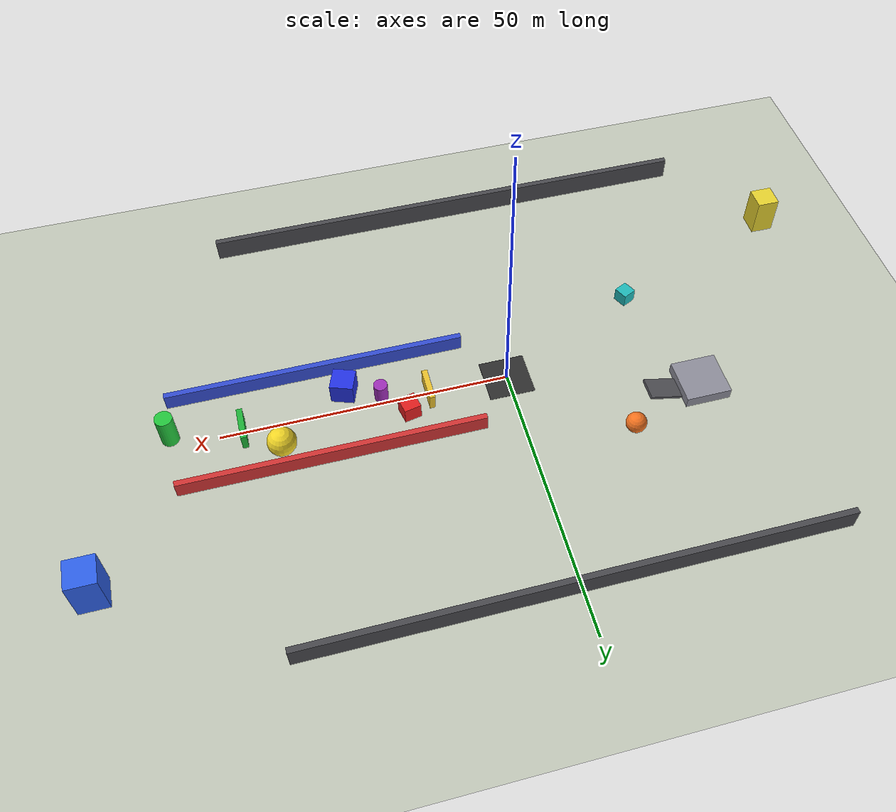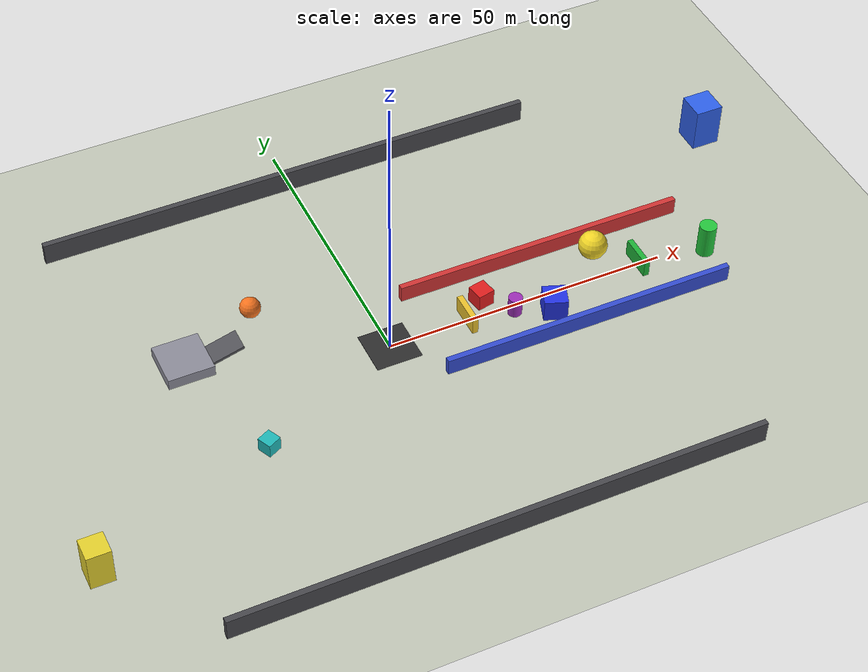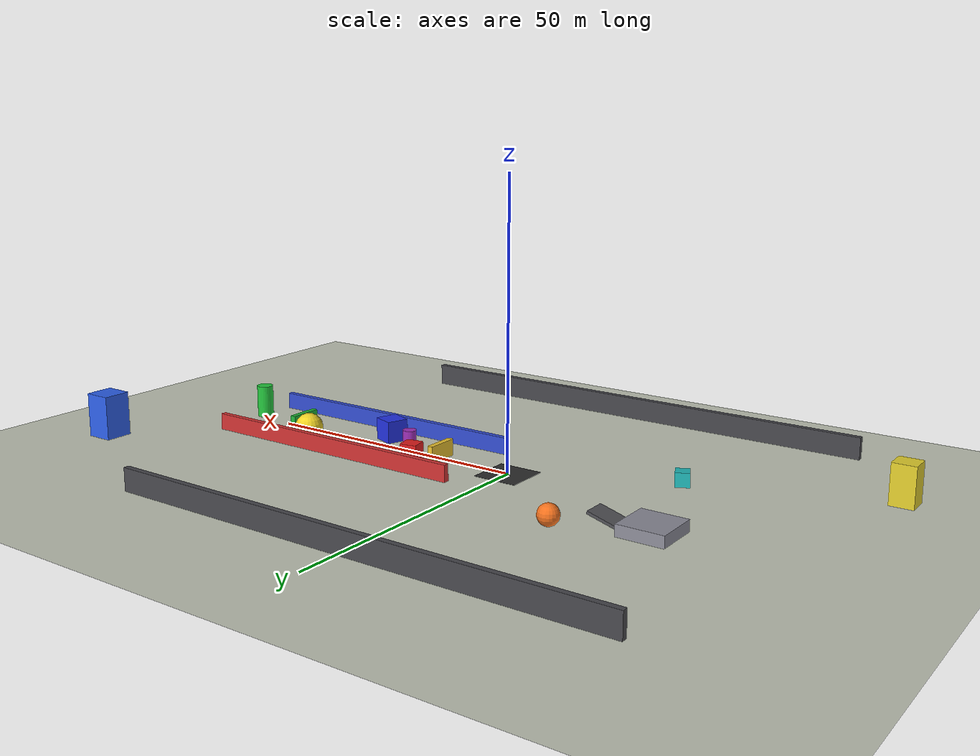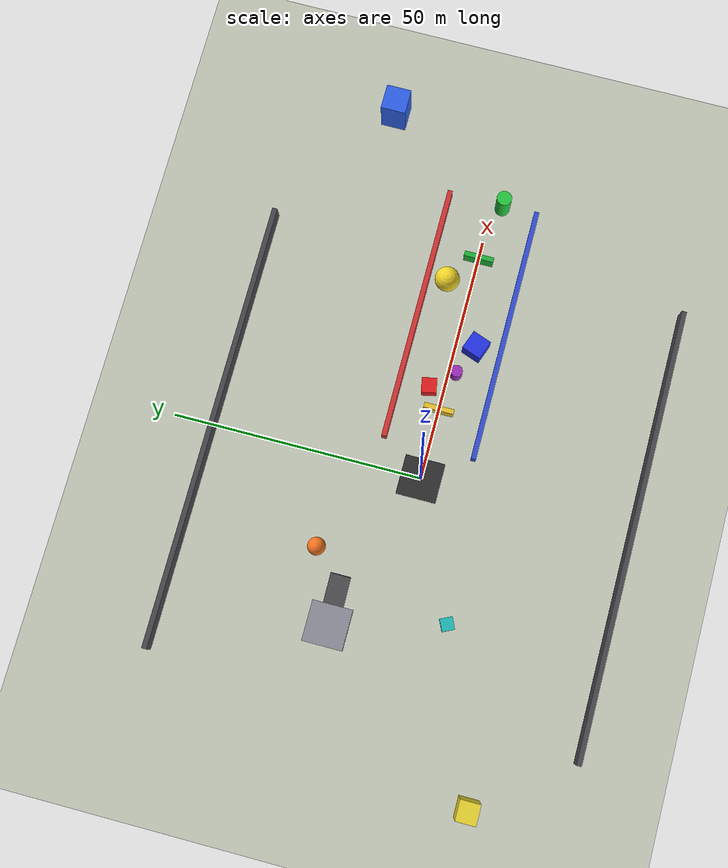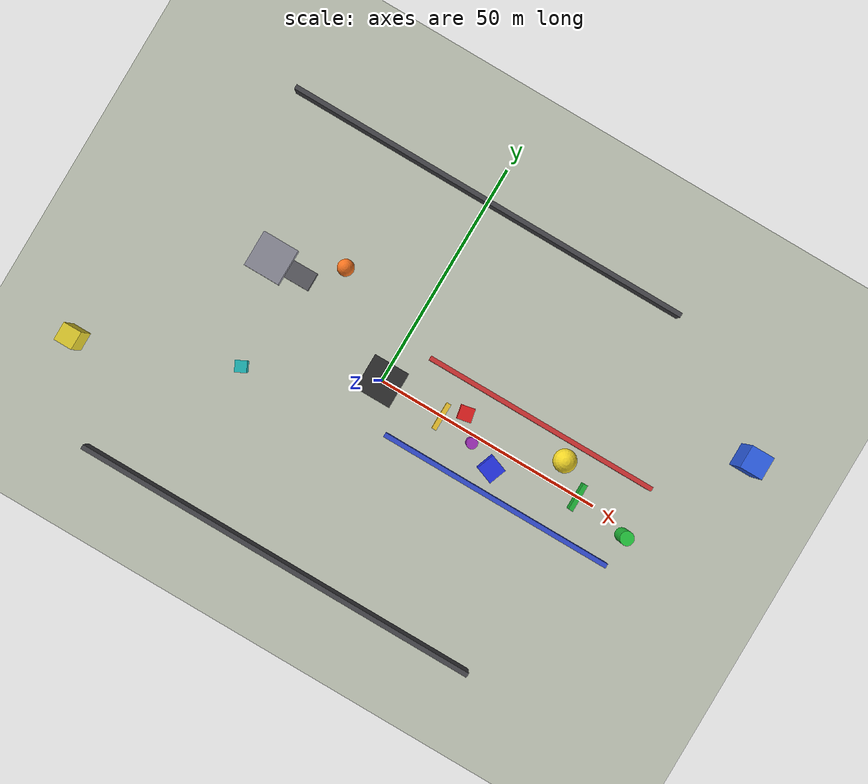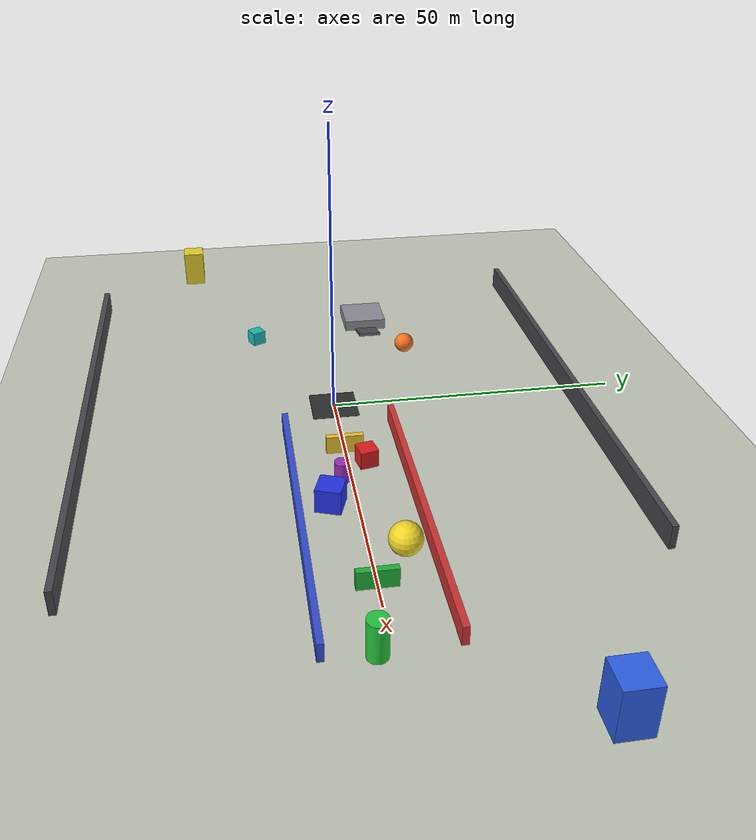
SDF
<?xml version="1.0" encoding="UTF-8"?>
<sdf version="1.9">
  <world name="mission_test_world">
    <physics type="ode">
      <max_step_size>0.004</max_step_size>
      <real_time_factor>1.0</real_time_factor>
      <real_time_update_rate>250</real_time_update_rate>
    </physics>

    <gravity>0 0 -9.8</gravity>
    <magnetic_field>6e-06 2.3e-05 -4.2e-05</magnetic_field>
    <atmosphere type="adiabatic"/>

    <scene>
      <grid>false</grid>
      <ambient>0.45 0.45 0.45 1</ambient>
      <background>0.68 0.79 0.92 1</background>
      <shadows>true</shadows>
      <sky>
        <clouds>true</clouds>
      </sky>
    </scene>

    <light name="sunUTC" type="directional">
      <pose>0 0 500 0 0 0</pose>
      <cast_shadows>true</cast_shadows>
      <intensity>1.1</intensity>
      <direction>0.2 0.4 -0.88</direction>
      <diffuse>0.95 0.95 0.92 1</diffuse>
      <specular>0.3 0.3 0.3 1</specular>
      <attenuation>
        <range>2000</range>
        <linear>0</linear>
        <constant>1</constant>
        <quadratic>0</quadratic>
      </attenuation>
    </light>

    <light name="fill_light" type="directional">
      <pose>0 0 300 0 0 0</pose>
      <cast_shadows>false</cast_shadows>
      <intensity>0.45</intensity>
      <direction>-0.3 -0.2 -0.93</direction>
      <diffuse>0.72 0.76 0.85 1</diffuse>
      <specular>0.1 0.1 0.1 1</specular>
      <attenuation>
        <range>2000</range>
        <linear>0</linear>
        <constant>1</constant>
        <quadratic>0</quadratic>
      </attenuation>
    </light>

    <model name="ground_plane">
      <static>true</static>
      <link name="link">
        <collision name="collision">
          <geometry>
            <plane>
              <normal>0 0 1</normal>
              <size>1 1</size>
            </plane>
          </geometry>
          <surface>
            <friction>
              <ode/>
            </friction>
          </surface>
        </collision>
        <visual name="visual">
          <geometry>
            <plane>
              <normal>0 0 1</normal>
              <size>600 600</size>
            </plane>
          </geometry>
          <material>
            <ambient>0.76 0.78 0.72 1</ambient>
            <diffuse>0.76 0.78 0.72 1</diffuse>
            <specular>0.1 0.1 0.1 1</specular>
          </material>
        </visual>
      </link>
    </model>

    <model name="spawn_pad">
      <static>true</static>
      <pose>0 0 0.025 0 0 0</pose>
      <link name="link">
        <collision name="collision">
          <geometry>
            <box>
              <size>8 8 0.05</size>
            </box>
          </geometry>
        </collision>
        <visual name="visual">
          <geometry>
            <box>
              <size>8 8 0.05</size>
            </box>
          </geometry>
          <material>
            <ambient>0.18 0.18 0.18 1</ambient>
            <diffuse>0.18 0.18 0.18 1</diffuse>
          </material>
        </visual>
      </link>
    </model>

    <model name="corridor_left_wall">
      <static>true</static>
      <pose>32 9 1.5 0 0 0</pose>
      <link name="link">
        <collision name="collision">
          <geometry>
            <box>
              <size>52 1 3</size>
            </box>
          </geometry>
        </collision>
        <visual name="visual">
          <geometry>
            <box>
              <size>52 1 3</size>
            </box>
          </geometry>
          <material>
            <ambient>0.82 0.2 0.2 1</ambient>
            <diffuse>0.82 0.2 0.2 1</diffuse>
          </material>
        </visual>
      </link>
    </model>

    <model name="corridor_right_wall">
      <static>true</static>
      <pose>32 -9 1.5 0 0 0</pose>
      <link name="link">
        <collision name="collision">
          <geometry>
            <box>
              <size>52 1 3</size>
            </box>
          </geometry>
        </collision>
        <visual name="visual">
          <geometry>
            <box>
              <size>52 1 3</size>
            </box>
          </geometry>
          <material>
            <ambient>0.2 0.3 0.82 1</ambient>
            <diffuse>0.2 0.3 0.82 1</diffuse>
          </material>
        </visual>
      </link>
    </model>

    <model name="corridor_gate_a">
      <static>true</static>
      <pose>14 0 1.5 0 0 0</pose>
      <link name="link">
        <collision name="collision">
          <geometry>
            <box>
              <size>1 6 3</size>
            </box>
          </geometry>
        </collision>
        <visual name="visual">
          <geometry>
            <box>
              <size>1 6 3</size>
            </box>
          </geometry>
          <material>
            <ambient>0.92 0.76 0.18 1</ambient>
            <diffuse>0.92 0.76 0.18 1</diffuse>
          </material>
        </visual>
      </link>
    </model>

    <model name="corridor_gate_b">
      <static>true</static>
      <pose>46 0 1.5 0 0 0</pose>
      <link name="link">
        <collision name="collision">
          <geometry>
            <box>
              <size>1 6 3</size>
            </box>
          </geometry>
        </collision>
        <visual name="visual">
          <geometry>
            <box>
              <size>1 6 3</size>
            </box>
          </geometry>
          <material>
            <ambient>0.12 0.7 0.22 1</ambient>
            <diffuse>0.12 0.7 0.22 1</diffuse>
          </material>
        </visual>
      </link>
    </model>

    <model name="red_cube_landmark">
      <static>true</static>
      <pose>18 3 1.5 0 0 0.2</pose>
      <link name="link">
        <collision name="collision">
          <geometry>
            <box>
              <size>3 3 3</size>
            </box>
          </geometry>
        </collision>
        <visual name="visual">
          <geometry>
            <box>
              <size>3 3 3</size>
            </box>
          </geometry>
          <material>
            <ambient>0.88 0.12 0.12 1</ambient>
            <diffuse>0.88 0.12 0.12 1</diffuse>
          </material>
        </visual>
      </link>
    </model>

    <model name="blue_cube_landmark">
      <static>true</static>
      <pose>28 -4 2 0 0 -0.35</pose>
      <link name="link">
        <collision name="collision">
          <geometry>
            <box>
              <size>4 4 4</size>
            </box>
          </geometry>
        </collision>
        <visual name="visual">
          <geometry>
            <box>
              <size>4 4 4</size>
            </box>
          </geometry>
          <material>
            <ambient>0.14 0.2 0.9 1</ambient>
            <diffuse>0.14 0.2 0.9 1</diffuse>
          </material>
        </visual>
      </link>
    </model>

    <model name="yellow_sphere_marker">
      <static>true</static>
      <pose>40 5 2.5 0 0 0</pose>
      <link name="link">
        <collision name="collision">
          <geometry>
            <sphere>
              <radius>2.5</radius>
            </sphere>
          </geometry>
        </collision>
        <visual name="visual">
          <geometry>
            <sphere>
              <radius>2.5</radius>
            </sphere>
          </geometry>
          <material>
            <ambient>0.95 0.84 0.15 1</ambient>
            <diffuse>0.95 0.84 0.15 1</diffuse>
          </material>
        </visual>
      </link>
    </model>

    <model name="green_cylinder_tower">
      <static>true</static>
      <pose>58 -2 3 0 0 0</pose>
      <link name="link">
        <collision name="collision">
          <geometry>
            <cylinder>
              <radius>1.5</radius>
              <length>6</length>
            </cylinder>
          </geometry>
        </collision>
        <visual name="visual">
          <geometry>
            <cylinder>
              <radius>1.5</radius>
              <length>6</length>
            </cylinder>
          </geometry>
          <material>
            <ambient>0.14 0.78 0.24 1</ambient>
            <diffuse>0.14 0.78 0.24 1</diffuse>
          </material>
        </visual>
      </link>
    </model>

    <model name="purple_cylinder_obstacle">
      <static>true</static>
      <pose>22 -1.5 1.75 0 0 0</pose>
      <link name="link">
        <collision name="collision">
          <geometry>
            <cylinder>
              <radius>1.2</radius>
              <length>3.5</length>
            </cylinder>
          </geometry>
        </collision>
        <visual name="visual">
          <geometry>
            <cylinder>
              <radius>1.2</radius>
              <length>3.5</length>
            </cylinder>
          </geometry>
          <material>
            <ambient>0.62 0.18 0.72 1</ambient>
            <diffuse>0.62 0.18 0.72 1</diffuse>
          </material>
        </visual>
      </link>
    </model>

    <model name="orange_sphere_marker">
      <static>true</static>
      <pose>-18 16 1.8 0 0 0</pose>
      <link name="link">
        <collision name="collision">
          <geometry>
            <sphere>
              <radius>1.8</radius>
            </sphere>
          </geometry>
        </collision>
        <visual name="visual">
          <geometry>
            <sphere>
              <radius>1.8</radius>
            </sphere>
          </geometry>
          <material>
            <ambient>0.96 0.45 0.12 1</ambient>
            <diffuse>0.96 0.45 0.12 1</diffuse>
          </material>
        </visual>
      </link>
    </model>

    <model name="teal_cube_obstacle">
      <static>true</static>
      <pose>-26 -12 1.25 0 0 0.45</pose>
      <link name="link">
        <collision name="collision">
          <geometry>
            <box>
              <size>2.5 2.5 2.5</size>
            </box>
          </geometry>
        </collision>
        <visual name="visual">
          <geometry>
            <box>
              <size>2.5 2.5 2.5</size>
            </box>
          </geometry>
          <material>
            <ambient>0.12 0.72 0.72 1</ambient>
            <diffuse>0.12 0.72 0.72 1</diffuse>
          </material>
        </visual>
      </link>
    </model>

    <model name="observation_platform">
      <static>true</static>
      <pose>-32 10 1 0 0 0</pose>
      <link name="link">
        <collision name="collision">
          <geometry>
            <box>
              <size>8 8 2</size>
            </box>
          </geometry>
        </collision>
        <visual name="visual">
          <geometry>
            <box>
              <size>8 8 2</size>
            </box>
          </geometry>
          <material>
            <ambient>0.55 0.55 0.6 1</ambient>
            <diffuse>0.55 0.55 0.6 1</diffuse>
          </material>
        </visual>
      </link>
    </model>

    <model name="access_ramp">
      <static>true</static>
      <pose>-26 10 0.75 0 -0.28 0</pose>
      <link name="link">
        <collision name="collision">
          <geometry>
            <box>
              <size>8 4 0.5</size>
            </box>
          </geometry>
        </collision>
        <visual name="visual">
          <geometry>
            <box>
              <size>8 4 0.5</size>
            </box>
          </geometry>
          <material>
            <ambient>0.32 0.32 0.34 1</ambient>
            <diffuse>0.32 0.32 0.34 1</diffuse>
          </material>
        </visual>
      </link>
    </model>

    <model name="north_wall">
      <static>true</static>
      <pose>0 42 2 0 0 0</pose>
      <link name="link">
        <collision name="collision">
          <geometry>
            <box>
              <size>90 1 4</size>
            </box>
          </geometry>
        </collision>
        <visual name="visual">
          <geometry>
            <box>
              <size>90 1 4</size>
            </box>
          </geometry>
          <material>
            <ambient>0.28 0.28 0.3 1</ambient>
            <diffuse>0.28 0.28 0.3 1</diffuse>
          </material>
        </visual>
      </link>
    </model>

    <model name="south_wall">
      <static>true</static>
      <pose>0 -42 2 0 0 0</pose>
      <link name="link">
        <collision name="collision">
          <geometry>
            <box>
              <size>90 1 4</size>
            </box>
          </geometry>
        </collision>
        <visual name="visual">
          <geometry>
            <box>
              <size>90 1 4</size>
            </box>
          </geometry>
          <material>
            <ambient>0.28 0.28 0.3 1</ambient>
            <diffuse>0.28 0.28 0.3 1</diffuse>
          </material>
        </visual>
      </link>
    </model>

    <model name="east_blue_tower">
      <static>true</static>
      <pose>72 24 4 0 0 0</pose>
      <link name="link">
        <collision name="collision">
          <geometry>
            <box>
              <size>5 5 8</size>
            </box>
          </geometry>
        </collision>
        <visual name="visual">
          <geometry>
            <box>
              <size>5 5 8</size>
            </box>
          </geometry>
          <material>
            <ambient>0.18 0.38 0.92 1</ambient>
            <diffuse>0.18 0.38 0.92 1</diffuse>
          </material>
        </visual>
      </link>
    </model>

    <model name="west_yellow_tower">
      <static>true</static>
      <pose>-58 -24 3.5 0 0 0</pose>
      <link name="link">
        <collision name="collision">
          <geometry>
            <box>
              <size>4 4 7</size>
            </box>
          </geometry>
        </collision>
        <visual name="visual">
          <geometry>
            <box>
              <size>4 4 7</size>
            </box>
          </geometry>
          <material>
            <ambient>0.9 0.82 0.18 1</ambient>
            <diffuse>0.9 0.82 0.18 1</diffuse>
          </material>
        </visual>
      </link>
    </model>

    <spherical_coordinates>
      <surface_model>EARTH_WGS84</surface_model>
      <world_frame_orientation>ENU</world_frame_orientation>
      <latitude_deg>47.397971057728974</latitude_deg>
      <longitude_deg>8.546163739800146</longitude_deg>
      <elevation>0</elevation>
    </spherical_coordinates>
  </world>
</sdf>
